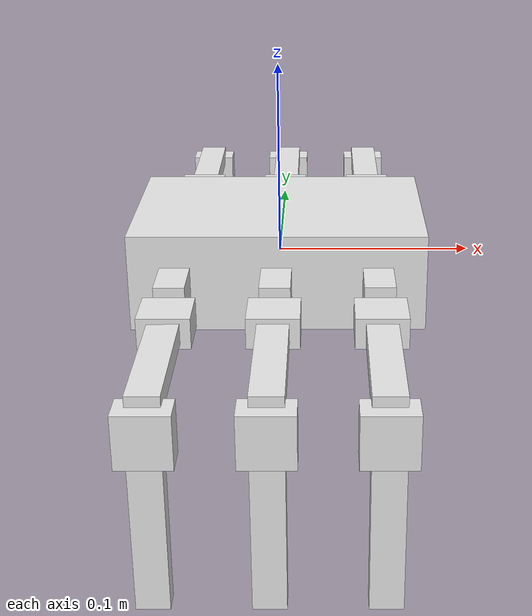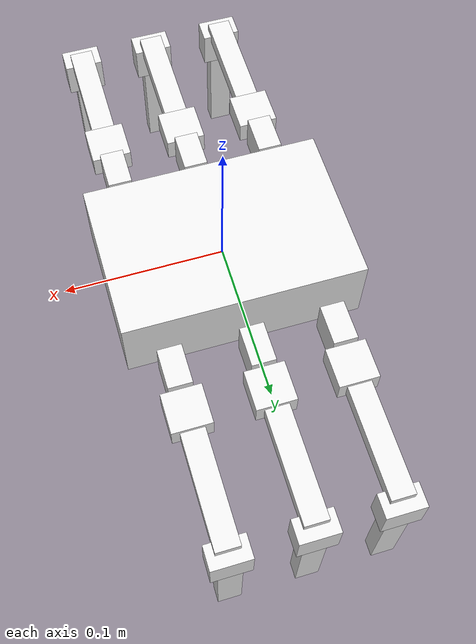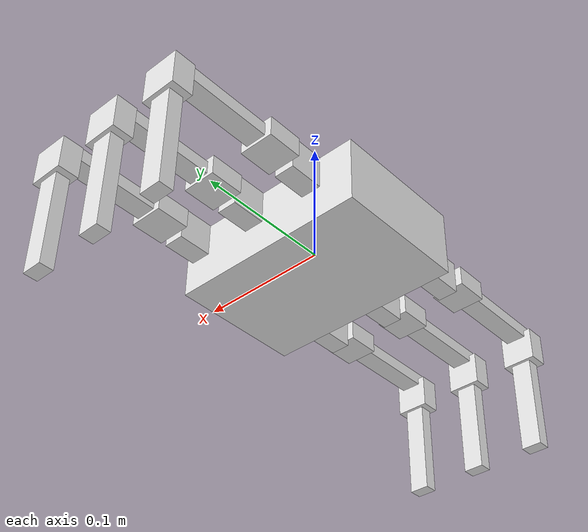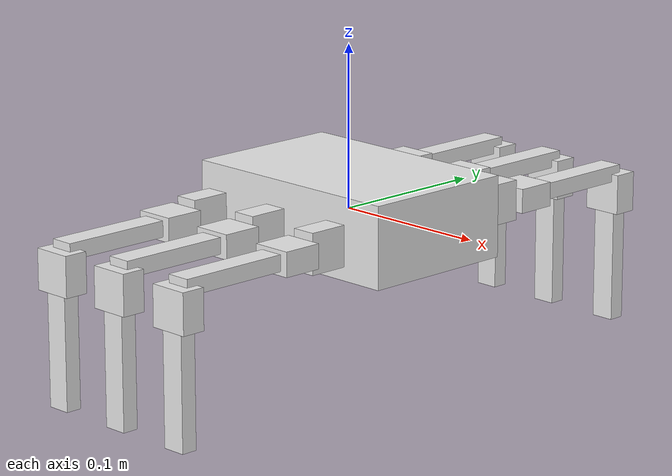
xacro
<?xml version="1.0"?>
<!-- Main file for hexapod robot definition -->
<robot name="hex_bot" xmlns:xacro="http://www.ros.org/wiki/xacro">
  <xacro:include filename="$(find hex_bot_description)/materials/materials.xacro"/>
  <xacro:include filename="$(find hex_bot_description)/urdf/hex_bot.gazebo"/>
  <xacro:include filename="$(find hex_bot_description)/urdf/config.xacro"/>
  <xacro:include filename="$(find hex_bot_description)/macros/structures.xacro"/>
  <xacro:include filename="$(find hex_bot_description)/macros/inertials.xacro"/>

  <link name="base_link"/>

  <xacro:make_box name="body" len="${body_len}" wid="${body_wid}" hei="${body_hei}" mas="${body_mas}"/>

  <xacro:make_leg prefix="FL" parent="body">
    <origin xyz="0.05 0.06 0" rpy="0 0 -1.57"/>
  </xacro:make_leg>

  <xacro:make_leg prefix="FR" parent="body">
    <origin xyz="0.05 -0.06 0" rpy="0 0 1.57"/>
  </xacro:make_leg>

  <xacro:make_leg prefix="ML" parent="body">
    <origin xyz="0.00 0.06 0" rpy="0 0 -1.57"/>
  </xacro:make_leg>

  <xacro:make_leg prefix="MR" parent="body">
    <origin xyz="0.00 -0.06 0" rpy="0 0 1.57"/>
  </xacro:make_leg>

  <xacro:make_leg prefix="BL" parent="body">
    <origin xyz="-0.05 0.06 0" rpy="0 0 -1.57"/>
  </xacro:make_leg>

  <xacro:make_leg prefix="BR" parent="body">
    <origin xyz="-0.05 -0.06 0" rpy="0 0 1.57"/>
  </xacro:make_leg>

  <xacro:make_fixed_joint child="body" parent="base_link"/>
</robot>

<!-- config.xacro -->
<!-- Values to configure the main structure of the robot -->
<robot name="hex_bot" xmlns:xacro="http://www.ros.org/wiki/xacro">
  <xacro:property name="body_len" value="0.15"/>
  <xacro:property name="body_wid" value="0.10"/>
  <xacro:property name="body_hei" value="0.05"/>
  <xacro:property name="body_mas" value="0.50"/>

  <xacro:property name="servo_len" value="0.025"/>
  <xacro:property name="servo_wid" value="0.015"/>
  <xacro:property name="servo_hei" value="0.025"/>
  <xacro:property name="servo_mas" value="0.020"/>
  <xacro:property name="servo_eff" value="3"/>
  <xacro:property name="servo_vel" value="5"/>
  <xacro:property name="servo_red" value="1"/>

  <xacro:property name="femur_len" value="0.070"/>
  <xacro:property name="femur_wid" value="0.010"/>
  <xacro:property name="femur_hei" value="0.015"/>
  <xacro:property name="femur_mas" value="0.150"/>

  <xacro:property name="tibia_len" value="0.070"/>
  <xacro:property name="tibia_wid" value="0.010"/>
  <xacro:property name="tibia_hei" value="0.015"/>
  <xacro:property name="tibia_mas" value="0.150"/>
</robot>

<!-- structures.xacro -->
<!-- File to include structures used in the robot -->
<robot name="hex_bot" xmlns:xacro="http://www.ros.org/wiki/xacro">
  <xacro:include filename="$(find hex_bot_description)/macros/make_box.xacro"/>
  <xacro:include filename="$(find hex_bot_description)/macros/make_servo.xacro"/>
  <xacro:include filename="$(find hex_bot_description)/macros/make_leg.xacro"/>
  <xacro:include filename="$(find hex_bot_description)/macros/make_transmissions.xacro"/>

  <xacro:macro name="make_fixed_joint" params="child parent">
    <joint name="${child}_to_${parent}_joint" type="fixed">
      <parent link="${parent}"/>
      <child link="${child}"/>
    </joint>
  </xacro:macro>

  <xacro:macro name="make_fixed_joint_with_origin" params="child parent *origin">
    <joint name="${child}_to_${parent}_joint" type="fixed">
      <parent link="${parent}"/>
      <child link="${child}"/>
      <insert_block name="origin"/>
    </joint>
  </xacro:macro>

</robot>

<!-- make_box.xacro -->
<!-- Macro to build a parameterized box -->
<robot name="hex_bot" xmlns:xacro="http://www.ros.org/wiki/xacro">
  <xacro:macro name="make_box" params="name len wid hei mas">
  <link name="${name}">
    <collision>
      <origin xyz="0 0 0" rpy="0 0 0"/>
      <geometry>
        <box size="${len} ${wid} ${hei}"/>
      </geometry>
    </collision>

    <visual>
      <origin xyz="0 0 0" rpy="0 0 0"/>
      <geometry>
        <box size="${len} ${wid} ${hei}"/>
      </geometry>
      <material name="white"/>
    </visual>

    <xacro:box_inertial x="${len}" y="${wid}" z="${hei}" mass="${mas}"/>
  </link>
  </xacro:macro>

  <xacro:macro name="make_box_with_origin" params="name len wid hei mas *origin">
  <link name="${name}">
    <collision>
      <insert_block name="origin" />
      <geometry>
        <box size="${len} ${wid} ${hei}"/>
      </geometry>
    </collision>

    <visual>
      <insert_block name="origin" />
      <geometry>
        <box size="${len} ${wid} ${hei}"/>
      </geometry>
      <material name="white"/>
    </visual>

    <xacro:box_inertial_with_origin x="${len}" y="${wid}" z="${hei}" mass="${mas}">
      <insert_block name="origin"/>
    </xacro:box_inertial_with_origin>
  </link>
  </xacro:macro>
</robot>

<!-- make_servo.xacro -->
<!-- Macro to build a parameterized servo -->
<robot name="hex_bot" xmlns:xacro="http://www.ros.org/wiki/xacro">
  <xacro:macro name="make_servo" params="name len wid hei mas parent">
    <xacro:make_box name="${name}" len="${len}" wid="${wid}" hei="${hei}" mas="${mas}"/>
    <xacro:make_fixed_joint child="${name}" parent="${parent}"/>
  </xacro:macro>

  <xacro:macro name="make_servo_with_origin" params="name len wid hei mas parent *origin">
    <xacro:make_box_with_origin name="${name}" len="${len}" wid="${wid}" hei="${hei}" mas="${mas}">
      <!-- The servo's origin is set at the front half -->
      <origin xyz="${-servo_len/2} 0 0" rpy="0 0 0"/>
    </xacro:make_box_with_origin>

    <joint name="${name}_to_${parent}_joint" type="revolute">
      <parent link="${parent}"/>
      <child link="${name}"/>
      <insert_block name="origin"/>
      <axis xyz="0 0 1"/>
      <limit lower="-1.57" upper="1.57" effort="${servo_eff}" velocity="${servo_vel}"/>
    </joint>
  </xacro:macro>
</robot>

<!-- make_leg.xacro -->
<!-- Macro to build a leg -->
<robot name="hex_bot" xmlns:xacro="http://www.ros.org/wiki/xacro">
  <xacro:macro name="make_leg" params="prefix parent *origin">
    <xacro:make_servo_with_origin name="${prefix}_servo_1" len="${servo_len}" wid="${servo_wid}" hei="${servo_hei}" mas="${servo_mas}" parent="${parent}">
      <insert_block name="origin"/>
    </xacro:make_servo_with_origin>

    <xacro:make_servo_with_origin name="${prefix}_servo_2" len="${servo_len}" wid="${servo_wid}" hei="${servo_hei}" mas="${servo_mas}" parent="${prefix}_servo_1">
      <origin xyz="-${servo_len} 0 0" rpy="1.57 0 0"/>
    </xacro:make_servo_with_origin>

    <!-- Femur -->
    <xacro:make_box name="${prefix}_femur" len="${femur_len}" wid="${femur_wid}" hei="${femur_hei}" mas="${femur_mas}"/>

    <xacro:make_fixed_joint_with_origin child="${prefix}_femur" parent="${prefix}_servo_2">
      <origin xyz="${-(femur_len/2 + servo_len)} 0 0" rpy="0 0 0"/>
    </xacro:make_fixed_joint_with_origin>

    <!-- Servo 3 + Tibia -->
    <xacro:make_servo_with_origin name="${prefix}_servo_3" len="${servo_len}" wid="${servo_wid}" hei="${servo_hei}" mas="${servo_mas}" parent="${prefix}_femur">
      <origin xyz="-${femur_len/2} 0 0" rpy="0 0 1.57"/>
    </xacro:make_servo_with_origin>

    <xacro:make_box name="${prefix}_tibia" len="${tibia_len}" wid="${tibia_wid}" hei="${tibia_hei}" mas="${tibia_mas}"/>

    <xacro:make_fixed_joint_with_origin child="${prefix}_tibia" parent="${prefix}_servo_3">
      <origin xyz="${-(tibia_len/2 + servo_len)} 0 0" rpy="0 0 0"/>
    </xacro:make_fixed_joint_with_origin>

    <!-- Transmissions -->
    <xacro:make_position_transmission joint="${prefix}_servo_1_to_${parent}_joint" reduction="${servo_red}"/>

    <xacro:make_position_transmission joint="${prefix}_servo_2_to_${prefix}_servo_1_joint" reduction="${servo_red}"/>

    <xacro:make_position_transmission joint="${prefix}_servo_3_to_${prefix}_femur_joint" reduction="${servo_red}"/>
</xacro:macro>
</robot>

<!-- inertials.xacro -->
<robot name="hex_bot" xmlns:xacro="http://ros.org/wiki/xacro">
  <xacro:macro name="box_inertial" params="x y z mass">
    <inertial>
    <mass value="${mass}" />
    <origin xyz="0 0 0" />
    <inertia ixx="${0.0833333 * mass * (y*y + z*z)}" ixy="0.0" ixz="0.0"
      iyy="${0.0833333 * mass * (x*x + z*z)}" iyz="0.0"
      izz="${0.0833333 * mass * (x*x + y*y)}" />
    </inertial>
  </xacro:macro>

  <xacro:macro name="box_inertial_with_origin" params="x y z mass *origin">
    <inertial>
      <mass value="${mass}" />
      <insert_block name="origin" />
      <inertia ixx="${0.0833333 * mass * (y*y + z*z)}" ixy="0.0" ixz="0.0"
      iyy="${0.0833333 * mass * (x*x + z*z)}" iyz="0.0"
      izz="${0.0833333 * mass * (x*x + y*y)}" />
    </inertial>
  </xacro:macro>
</robot>
